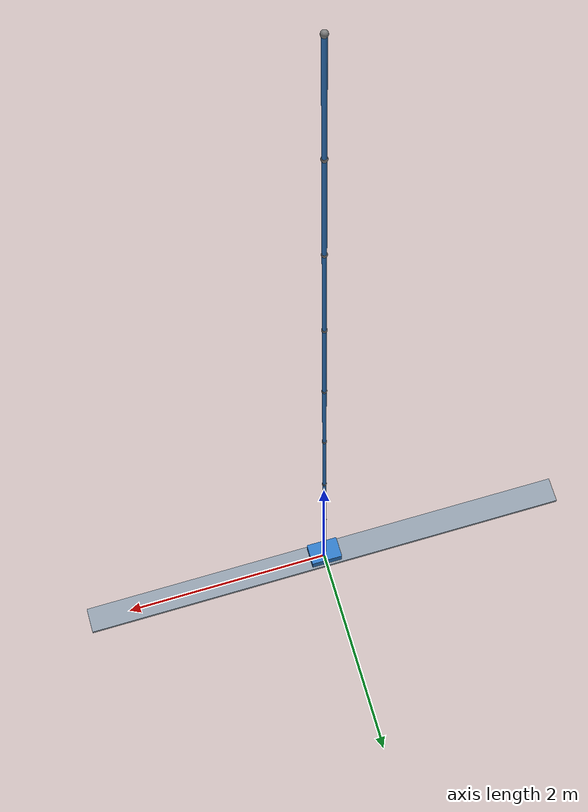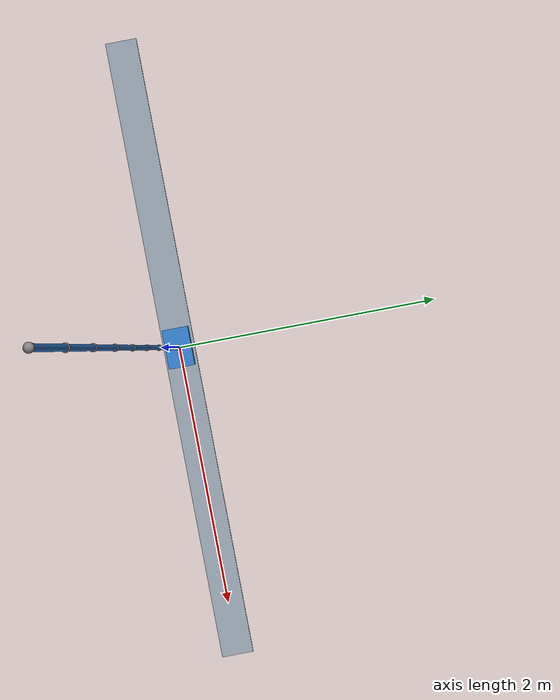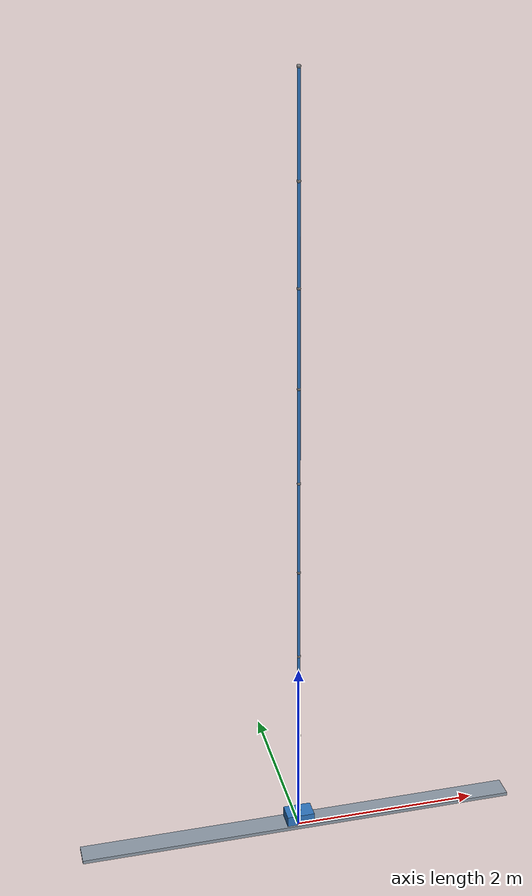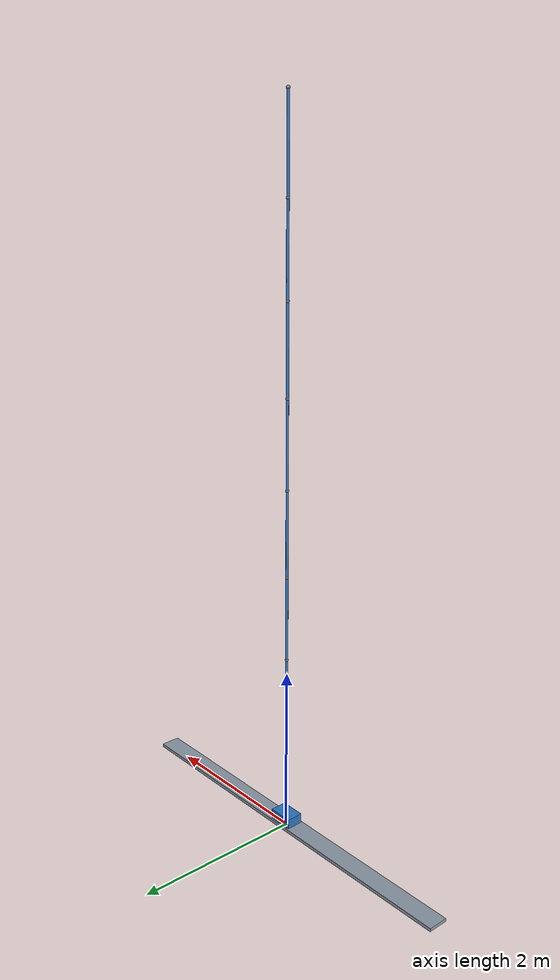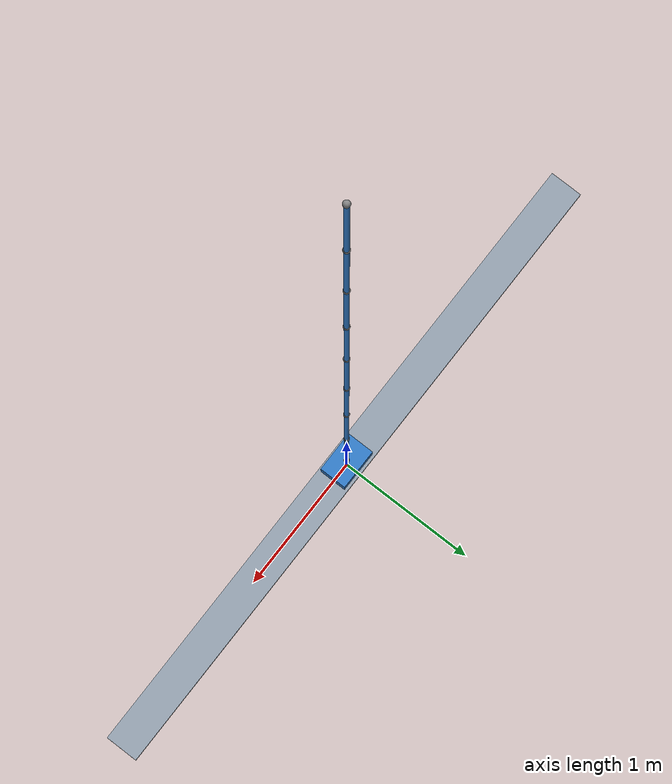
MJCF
<!-- Serial N-link extension: relative hinges, one cart force, non-colliding ideal uniform rods. -->
<mujoco model="cartpole-serial-8-uniform-rods">
  <compiler angle="radian" inertiafromgeom="false" />
  <option timestep="0.005" gravity="0 0 -9.8" integrator="Euler" />
  <default>
    <joint damping="0" armature="0" frictionloss="0" />
    <geom contype="0" conaffinity="0" />
  </default>
  <worldbody>
    <geom name="rail" type="box" pos="0 0 0.04" size="2.4 0.12 0.02" rgba="0.55 0.6 0.65 1" />
    <body name="cart" pos="0 0 0.12">
      <joint name="cart_slide" type="slide" axis="1 0 0" limited="false" />
      <inertial pos="0 0 0" mass="1.0" diaginertia="0.01 0.01 0.01" />
      <geom name="cart_visual" type="box" size="0.15 0.1 0.06" rgba="0.18 0.46 0.75 1" />
      <body name="pole" pos="0 0 0.06">
        <joint name="pole_hinge" type="hinge" axis="0 1 0" limited="false" />
        <inertial pos="0 0 0.5" mass="0.1" diaginertia="0.008333333333333333 0.008333333333333333 1e-08" />
        <geom name="pole_visual" type="capsule" fromto="0 0 0 0 0 1.0" size="0.015" rgba="0.18 0.46 0.75 1" />
        <site name="pivot" pos="0 0 0" size="0.02" />
        <site name="pole_tip" pos="0 0 1.0" size="0.02" />
        <body name="pole_2" pos="0 0 1.0">
          <joint name="pole_hinge_2" type="hinge" axis="0 1 0" limited="false" />
          <inertial pos="0 0 0.5" mass="0.1" diaginertia="0.008333333333333333 0.008333333333333333 1e-08" />
          <geom name="pole_visual_2" type="capsule" fromto="0 0 0 0 0 1.0" size="0.015" rgba="0.18 0.46 0.75 1" />
          <site name="pivot_2" pos="0 0 0" size="0.02" />
          <site name="pole_tip_2" pos="0 0 1.0" size="0.02" />
          <body name="pole_3" pos="0 0 1.0">
            <joint name="pole_hinge_3" type="hinge" axis="0 1 0" limited="false" />
            <inertial pos="0 0 0.5" mass="0.1" diaginertia="0.008333333333333333 0.008333333333333333 1e-08" />
            <geom name="pole_visual_3" type="capsule" fromto="0 0 0 0 0 1.0" size="0.015" rgba="0.18 0.46 0.75 1" />
            <site name="pivot_3" pos="0 0 0" size="0.02" />
            <site name="pole_tip_3" pos="0 0 1.0" size="0.02" />
            <body name="pole_4" pos="0 0 1.0">
              <joint name="pole_hinge_4" type="hinge" axis="0 1 0" limited="false" />
              <inertial pos="0 0 0.5" mass="0.1" diaginertia="0.008333333333333333 0.008333333333333333 1e-08" />
              <geom name="pole_visual_4" type="capsule" fromto="0 0 0 0 0 1.0" size="0.015" rgba="0.18 0.46 0.75 1" />
              <site name="pivot_4" pos="0 0 0" size="0.02" />
              <site name="pole_tip_4" pos="0 0 1.0" size="0.02" />
              <body name="pole_5" pos="0 0 1.0">
                <joint name="pole_hinge_5" type="hinge" axis="0 1 0" limited="false" />
                <inertial pos="0 0 0.5" mass="0.1" diaginertia="0.008333333333333333 0.008333333333333333 1e-08" />
                <geom name="pole_visual_5" type="capsule" fromto="0 0 0 0 0 1.0" size="0.015" rgba="0.18 0.46 0.75 1" />
                <site name="pivot_5" pos="0 0 0" size="0.02" />
                <site name="pole_tip_5" pos="0 0 1.0" size="0.02" />
                <body name="pole_6" pos="0 0 1.0">
                  <joint name="pole_hinge_6" type="hinge" axis="0 1 0" limited="false" />
                  <inertial pos="0 0 0.5" mass="0.1" diaginertia="0.008333333333333333 0.008333333333333333 1e-08" />
                  <geom name="pole_visual_6" type="capsule" fromto="0 0 0 0 0 1.0" size="0.015" rgba="0.18 0.46 0.75 1" />
                  <site name="pivot_6" pos="0 0 0" size="0.02" />
                  <site name="pole_tip_6" pos="0 0 1.0" size="0.02" />
                  <body name="pole_7" pos="0 0 1.0">
                    <joint name="pole_hinge_7" type="hinge" axis="0 1 0" limited="false" />
                    <inertial pos="0 0 0.5" mass="0.1" diaginertia="0.008333333333333333 0.008333333333333333 1e-08" />
                    <geom name="pole_visual_7" type="capsule" fromto="0 0 0 0 0 1.0" size="0.015" rgba="0.18 0.46 0.75 1" />
                    <site name="pivot_7" pos="0 0 0" size="0.02" />
                    <site name="pole_tip_7" pos="0 0 1.0" size="0.02" />
                    <body name="pole_8" pos="0 0 1.0">
                      <joint name="pole_hinge_8" type="hinge" axis="0 1 0" limited="false" />
                      <inertial pos="0 0 0.5" mass="0.1" diaginertia="0.008333333333333333 0.008333333333333333 1e-08" />
                      <geom name="pole_visual_8" type="capsule" fromto="0 0 0 0 0 1.0" size="0.015" rgba="0.18 0.46 0.75 1" />
                      <site name="pivot_8" pos="0 0 0" size="0.02" />
                      <site name="pole_tip_8" pos="0 0 1.0" size="0.02" />
                    </body>
                  </body>
                </body>
              </body>
            </body>
          </body>
        </body>
      </body>
    </body>
  </worldbody>
  <actuator>
    <motor name="cart_force" joint="cart_slide" gear="1" ctrllimited="false" />
  </actuator>
</mujoco>
